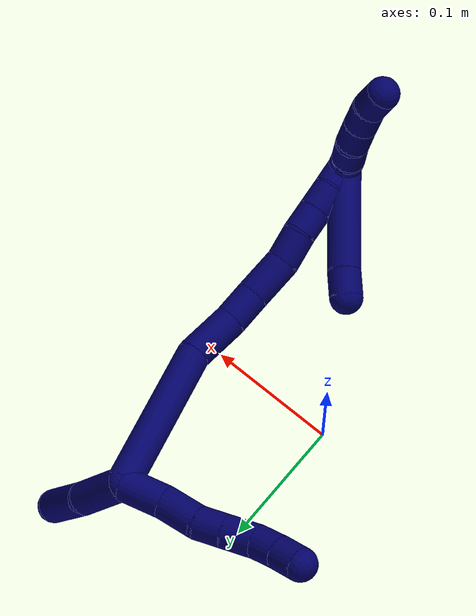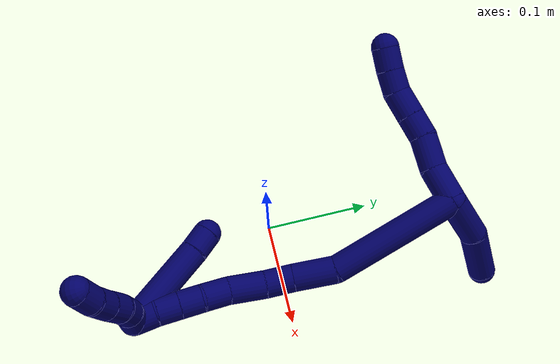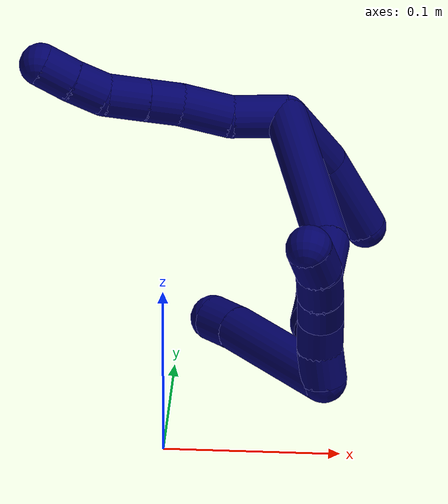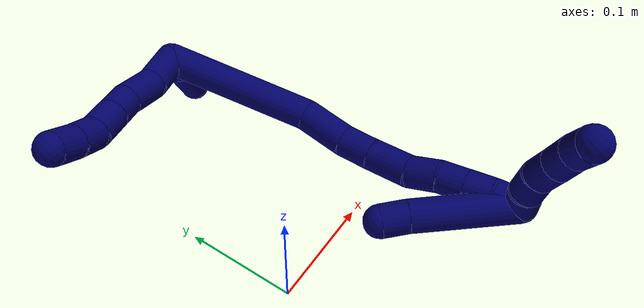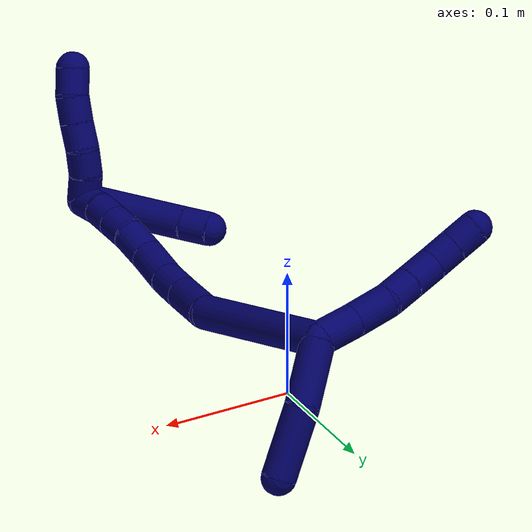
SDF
<sdf version="1.7">
 <world name="default">
  <model name="7">
   <static>0</static>
   <link name="7">
    <collision name="collision-cylinder-e_1_2_8">
     <pose>-0.015707 -0.00122 -0.00424 2.86149 -1.29694 -2.77373</pose>
     <geometry><cylinder><radius>0.0125</radius><length>0.03263</length></cylinder></geometry>
     <surface>
      <friction><ode><mu>1.16</mu><mu2>1.16</mu2><slip1>0</slip1><slip2>0</slip2></ode></friction>
      <contact><ode><kp>1e+06</kp><kd>1</kd><max_vel>0</max_vel><min_depth>0.001</min_depth></ode></contact>
     </surface>
    </collision>
    <visual name="visual-cylinder-e_1_2_8">
     <pose>-0.015707 -0.00122 -0.00424 2.86149 -1.29694 -2.77373</pose>
     <geometry><cylinder><radius>0.0125</radius><length>0.03263</length></cylinder></geometry>
     <material><ambient>0.003922 0 0.403922 1</ambient></material>
    </visual>
    <collision name="collision-cylinder-e_2_8_9">
     <pose>-0.046364 -0.004667 -0.008791 1.70917 -1.42151 -1.55976</pose>
     <geometry><cylinder><radius>0.0125</radius><length>0.030235</length></cylinder></geometry>
     <surface>
      <friction><ode><mu>1.16</mu><mu2>1.16</mu2><slip1>0</slip1><slip2>0</slip2></ode></friction>
      <contact><ode><kp>1e+06</kp><kd>1</kd><max_vel>0</max_vel><min_depth>0.001</min_depth></ode></contact>
     </surface>
    </collision>
    <visual name="visual-cylinder-e_2_8_9">
     <pose>-0.046364 -0.004667 -0.008791 1.70917 -1.42151 -1.55976</pose>
     <geometry><cylinder><radius>0.0125</radius><length>0.030235</length></cylinder></geometry>
     <material><ambient>0.003922 0 0.403922 1</ambient></material>
    </visual>
    <collision name="collision-cylinder-e_3_9_10">
     <pose>-0.071379 -0.009549 -0.01142 2.28868 -1.23388 -2.0022</pose>
     <geometry><cylinder><radius>0.0125</radius><length>0.02133</length></cylinder></geometry>
     <surface>
      <friction><ode><mu>1.16</mu><mu2>1.16</mu2><slip1>0</slip1><slip2>0</slip2></ode></friction>
      <contact><ode><kp>1e+06</kp><kd>1</kd><max_vel>0</max_vel><min_depth>0.001</min_depth></ode></contact>
     </surface>
    </collision>
    <visual name="visual-cylinder-e_3_9_10">
     <pose>-0.071379 -0.009549 -0.01142 2.28868 -1.23388 -2.0022</pose>
     <geometry><cylinder><radius>0.0125</radius><length>0.02133</length></cylinder></geometry>
     <material><ambient>0.003922 0 0.403922 1</ambient></material>
    </visual>
    <collision name="collision-cylinder-e_4_10_11">
     <pose>-0.093152 -0.01535 -0.016414 2.27559 -1.23173 -1.98435</pose>
     <geometry><cylinder><radius>0.0125</radius><length>0.024828</length></cylinder></geometry>
     <surface>
      <friction><ode><mu>1.16</mu><mu2>1.16</mu2><slip1>0</slip1><slip2>0</slip2></ode></friction>
      <contact><ode><kp>1e+06</kp><kd>1</kd><max_vel>0</max_vel><min_depth>0.001</min_depth></ode></contact>
     </surface>
    </collision>
    <visual name="visual-cylinder-e_4_10_11">
     <pose>-0.093152 -0.01535 -0.016414 2.27559 -1.23173 -1.98435</pose>
     <geometry><cylinder><radius>0.0125</radius><length>0.024828</length></cylinder></geometry>
     <material><ambient>0.003922 0 0.403922 1</ambient></material>
    </visual>
    <collision name="collision-cylinder-e_5_11_12">
     <pose>-0.114468 -0.021815 -0.018517 1.39987 -1.23358 -1.07667</pose>
     <geometry><cylinder><radius>0.0125</radius><length>0.020364</length></cylinder></geometry>
     <surface>
      <friction><ode><mu>1.16</mu><mu2>1.16</mu2><slip1>0</slip1><slip2>0</slip2></ode></friction>
      <contact><ode><kp>1e+06</kp><kd>1</kd><max_vel>0</max_vel><min_depth>0.001</min_depth></ode></contact>
     </surface>
    </collision>
    <visual name="visual-cylinder-e_5_11_12">
     <pose>-0.114468 -0.021815 -0.018517 1.39987 -1.23358 -1.07667</pose>
     <geometry><cylinder><radius>0.0125</radius><length>0.020364</length></cylinder></geometry>
     <material><ambient>0.003922 0 0.403922 1</ambient></material>
    </visual>
    <collision name="collision-cylinder-e_6_12_6">
     <pose>-0.133681 -0.028576 -0.016489 1.17093 -1.19986 -0.851555</pose>
     <geometry><cylinder><radius>0.0125</radius><length>0.020612</length></cylinder></geometry>
     <surface>
      <friction><ode><mu>1.16</mu><mu2>1.16</mu2><slip1>0</slip1><slip2>0</slip2></ode></friction>
      <contact><ode><kp>1e+06</kp><kd>1</kd><max_vel>0</max_vel><min_depth>0.001</min_depth></ode></contact>
     </surface>
    </collision>
    <visual name="visual-cylinder-e_6_12_6">
     <pose>-0.133681 -0.028576 -0.016489 1.17093 -1.19986 -0.851555</pose>
     <geometry><cylinder><radius>0.0125</radius><length>0.020612</length></cylinder></geometry>
     <material><ambient>0.003922 0 0.403922 1</ambient></material>
    </visual>
    <collision name="collision-cylinder-e_1_2_13">
     <pose>0.013658 0.019509 -7.9e-05 -1.57487 0.61078 -0.61312</pose>
     <geometry><cylinder><radius>0.0125</radius><length>0.04763</length></cylinder></geometry>
     <surface>
      <friction><ode><mu>1.16</mu><mu2>1.16</mu2><slip1>0</slip1><slip2>0</slip2></ode></friction>
      <contact><ode><kp>1e+06</kp><kd>1</kd><max_vel>0</max_vel><min_depth>0.001</min_depth></ode></contact>
     </surface>
    </collision>
    <visual name="visual-cylinder-e_1_2_13">
     <pose>0.013658 0.019509 -7.9e-05 -1.57487 0.61078 -0.61312</pose>
     <geometry><cylinder><radius>0.0125</radius><length>0.04763</length></cylinder></geometry>
     <material><ambient>0.003922 0 0.403922 1</ambient></material>
    </visual>
    <collision name="collision-cylinder-e_2_13_5">
     <pose>0.041933 0.059776 -0.006571 -1.87042 0.592234 -0.784282</pose>
     <geometry><cylinder><radius>0.0125</radius><length>0.05237</length></cylinder></geometry>
     <surface>
      <friction><ode><mu>1.16</mu><mu2>1.16</mu2><slip1>0</slip1><slip2>0</slip2></ode></friction>
      <contact><ode><kp>1e+06</kp><kd>1</kd><max_vel>0</max_vel><min_depth>0.001</min_depth></ode></contact>
     </surface>
    </collision>
    <visual name="visual-cylinder-e_2_13_5">
     <pose>0.041933 0.059776 -0.006571 -1.87042 0.592234 -0.784282</pose>
     <geometry><cylinder><radius>0.0125</radius><length>0.05237</length></cylinder></geometry>
     <material><ambient>0.003922 0 0.403922 1</ambient></material>
    </visual>
    <collision name="collision-cylinder-e_1_2_14">
     <pose>0.017741 -0.01881 -0.052966 2.80035 0.30574 1.45924</pose>
     <geometry><cylinder><radius>0.0125</radius><length>0.11788</length></cylinder></geometry>
     <surface>
      <friction><ode><mu>1.16</mu><mu2>1.16</mu2><slip1>0</slip1><slip2>0</slip2></ode></friction>
      <contact><ode><kp>1e+06</kp><kd>1</kd><max_vel>0</max_vel><min_depth>0.001</min_depth></ode></contact>
     </surface>
    </collision>
    <visual name="visual-cylinder-e_1_2_14">
     <pose>0.017741 -0.01881 -0.052966 2.80035 0.30574 1.45924</pose>
     <geometry><cylinder><radius>0.0125</radius><length>0.11788</length></cylinder></geometry>
     <material><ambient>0.003922 0 0.403922 1</ambient></material>
    </visual>
    <collision name="collision-cylinder-e_2_14_15">
     <pose>0.034902 -0.045246 -0.12363 2.73473 -0.030067 -0.145508</pose>
     <geometry><cylinder><radius>0.0125</radius><length>0.038559</length></cylinder></geometry>
     <surface>
      <friction><ode><mu>1.16</mu><mu2>1.16</mu2><slip1>0</slip1><slip2>0</slip2></ode></friction>
      <contact><ode><kp>1e+06</kp><kd>1</kd><max_vel>0</max_vel><min_depth>0.001</min_depth></ode></contact>
     </surface>
    </collision>
    <visual name="visual-cylinder-e_2_14_15">
     <pose>0.034902 -0.045246 -0.12363 2.73473 -0.030067 -0.145508</pose>
     <geometry><cylinder><radius>0.0125</radius><length>0.038559</length></cylinder></geometry>
     <material><ambient>0.003922 0 0.403922 1</ambient></material>
    </visual>
    <collision name="collision-cylinder-e_3_15_16">
     <pose>0.034674 -0.059278 -0.15227 2.61193 0.027707 0.102082</pose>
     <geometry><cylinder><radius>0.0125</radius><length>0.025369</length></cylinder></geometry>
     <surface>
      <friction><ode><mu>1.16</mu><mu2>1.16</mu2><slip1>0</slip1><slip2>0</slip2></ode></friction>
      <contact><ode><kp>1e+06</kp><kd>1</kd><max_vel>0</max_vel><min_depth>0.001</min_depth></ode></contact>
     </surface>
    </collision>
    <visual name="visual-cylinder-e_3_15_16">
     <pose>0.034674 -0.059278 -0.15227 2.61193 0.027707 0.102082</pose>
     <geometry><cylinder><radius>0.0125</radius><length>0.025369</length></cylinder></geometry>
     <material><ambient>0.003922 0 0.403922 1</ambient></material>
    </visual>
    <collision name="collision-cylinder-e_4_16_17">
     <pose>0.034598 -0.075377 -0.176663 2.51718 -0.025791 -0.079868</pose>
     <geometry><cylinder><radius>0.0125</radius><length>0.03317</length></cylinder></geometry>
     <surface>
      <friction><ode><mu>1.16</mu><mu2>1.16</mu2><slip1>0</slip1><slip2>0</slip2></ode></friction>
      <contact><ode><kp>1e+06</kp><kd>1</kd><max_vel>0</max_vel><min_depth>0.001</min_depth></ode></contact>
     </surface>
    </collision>
    <visual name="visual-cylinder-e_4_16_17">
     <pose>0.034598 -0.075377 -0.176663 2.51718 -0.025791 -0.079868</pose>
     <geometry><cylinder><radius>0.0125</radius><length>0.03317</length></cylinder></geometry>
     <material><ambient>0.003922 0 0.403922 1</ambient></material>
    </visual>
    <collision name="collision-cylinder-e_5_17_18">
     <pose>0.03557 -0.094033 -0.198171 2.30304 0.1156 0.258211</pose>
     <geometry><cylinder><radius>0.0125</radius><length>0.024266</length></cylinder></geometry>
     <surface>
      <friction><ode><mu>1.16</mu><mu2>1.16</mu2><slip1>0</slip1><slip2>0</slip2></ode></friction>
      <contact><ode><kp>1e+06</kp><kd>1</kd><max_vel>0</max_vel><min_depth>0.001</min_depth></ode></contact>
     </surface>
    </collision>
    <visual name="visual-cylinder-e_5_17_18">
     <pose>0.03557 -0.094033 -0.198171 2.30304 0.1156 0.258211</pose>
     <geometry><cylinder><radius>0.0125</radius><length>0.024266</length></cylinder></geometry>
     <material><ambient>0.003922 0 0.403922 1</ambient></material>
    </visual>
    <collision name="collision-cylinder-e_6_18_19">
     <pose>0.038043 -0.108917 -0.214355 2.51186 0.10636 0.324001</pose>
     <geometry><cylinder><radius>0.0125</radius><length>0.020224</length></cylinder></geometry>
     <surface>
      <friction><ode><mu>1.16</mu><mu2>1.16</mu2><slip1>0</slip1><slip2>0</slip2></ode></friction>
      <contact><ode><kp>1e+06</kp><kd>1</kd><max_vel>0</max_vel><min_depth>0.001</min_depth></ode></contact>
     </surface>
    </collision>
    <visual name="visual-cylinder-e_6_18_19">
     <pose>0.038043 -0.108917 -0.214355 2.51186 0.10636 0.324001</pose>
     <geometry><cylinder><radius>0.0125</radius><length>0.020224</length></cylinder></geometry>
     <material><ambient>0.003922 0 0.403922 1</ambient></material>
    </visual>
    <collision name="collision-cylinder-e_7_19_20">
     <pose>0.0402 -0.120723 -0.230581 2.51326 0.107872 0.329304</pose>
     <geometry><cylinder><radius>0.0125</radius><length>0.020141</length></cylinder></geometry>
     <surface>
      <friction><ode><mu>1.16</mu><mu2>1.16</mu2><slip1>0</slip1><slip2>0</slip2></ode></friction>
      <contact><ode><kp>1e+06</kp><kd>1</kd><max_vel>0</max_vel><min_depth>0.001</min_depth></ode></contact>
     </surface>
    </collision>
    <visual name="visual-cylinder-e_7_19_20">
     <pose>0.0402 -0.120723 -0.230581 2.51326 0.107872 0.329304</pose>
     <geometry><cylinder><radius>0.0125</radius><length>0.020141</length></cylinder></geometry>
     <material><ambient>0.003922 0 0.403922 1</ambient></material>
    </visual>
    <collision name="collision-cylinder-e_8_20_1">
     <pose>0.043024 -0.131238 -0.247596 2.66267 0.171478 0.676981</pose>
     <geometry><cylinder><radius>0.0125</radius><length>0.02039</length></cylinder></geometry>
     <surface>
      <friction><ode><mu>1.16</mu><mu2>1.16</mu2><slip1>0</slip1><slip2>0</slip2></ode></friction>
      <contact><ode><kp>1e+06</kp><kd>1</kd><max_vel>0</max_vel><min_depth>0.001</min_depth></ode></contact>
     </surface>
    </collision>
    <visual name="visual-cylinder-e_8_20_1">
     <pose>0.043024 -0.131238 -0.247596 2.66267 0.171478 0.676981</pose>
     <geometry><cylinder><radius>0.0125</radius><length>0.02039</length></cylinder></geometry>
     <material><ambient>0.003922 0 0.403922 1</ambient></material>
    </visual>
    <collision name="collision-cylinder-e_1_1_21">
     <pose>0.019328 -0.116208 -0.232819 -0.692625 -0.690514 0.258129</pose>
     <geometry><cylinder><radius>0.0125</radius><length>0.07987</length></cylinder></geometry>
     <surface>
      <friction><ode><mu>1.16</mu><mu2>1.16</mu2><slip1>0</slip1><slip2>0</slip2></ode></friction>
      <contact><ode><kp>1e+06</kp><kd>1</kd><max_vel>0</max_vel><min_depth>0.001</min_depth></ode></contact>
     </surface>
    </collision>
    <visual name="visual-cylinder-e_1_1_21">
     <pose>0.019328 -0.116208 -0.232819 -0.692625 -0.690514 0.258129</pose>
     <geometry><cylinder><radius>0.0125</radius><length>0.07987</length></cylinder></geometry>
     <material><ambient>0.003922 0 0.403922 1</ambient></material>
    </visual>
    <collision name="collision-cylinder-e_2_21_4">
     <pose>-0.013033 -0.091502 -0.203846 -0.76278 -0.758714 0.317068</pose>
     <geometry><cylinder><radius>0.0125</radius><length>0.02013</length></cylinder></geometry>
     <surface>
      <friction><ode><mu>1.16</mu><mu2>1.16</mu2><slip1>0</slip1><slip2>0</slip2></ode></friction>
      <contact><ode><kp>1e+06</kp><kd>1</kd><max_vel>0</max_vel><min_depth>0.001</min_depth></ode></contact>
     </surface>
    </collision>
    <visual name="visual-cylinder-e_2_21_4">
     <pose>-0.013033 -0.091502 -0.203846 -0.76278 -0.758714 0.317068</pose>
     <geometry><cylinder><radius>0.0125</radius><length>0.02013</length></cylinder></geometry>
     <material><ambient>0.003922 0 0.403922 1</ambient></material>
    </visual>
    <collision name="collision-cylinder-e_1_1_22">
     <pose>0.042204 -0.144471 -0.252105 1.09743 -0.258904 -0.158834</pose>
     <geometry><cylinder><radius>0.0125</radius><length>0.02</length></cylinder></geometry>
     <surface>
      <friction><ode><mu>1.16</mu><mu2>1.16</mu2><slip1>0</slip1><slip2>0</slip2></ode></friction>
      <contact><ode><kp>1e+06</kp><kd>1</kd><max_vel>0</max_vel><min_depth>0.001</min_depth></ode></contact>
     </surface>
    </collision>
    <visual name="visual-cylinder-e_1_1_22">
     <pose>0.042204 -0.144471 -0.252105 1.09743 -0.258904 -0.158834</pose>
     <geometry><cylinder><radius>0.0125</radius><length>0.02</length></cylinder></geometry>
     <material><ambient>0.003922 0 0.403922 1</ambient></material>
    </visual>
    <collision name="collision-cylinder-e_2_22_23">
     <pose>0.038525 -0.162509 -0.244577 1.25138 -0.112087 -0.081027</pose>
     <geometry><cylinder><radius>0.0125</radius><length>0.02</length></cylinder></geometry>
     <surface>
      <friction><ode><mu>1.16</mu><mu2>1.16</mu2><slip1>0</slip1><slip2>0</slip2></ode></friction>
      <contact><ode><kp>1e+06</kp><kd>1</kd><max_vel>0</max_vel><min_depth>0.001</min_depth></ode></contact>
     </surface>
    </collision>
    <visual name="visual-cylinder-e_2_22_23">
     <pose>0.038525 -0.162509 -0.244577 1.25138 -0.112087 -0.081027</pose>
     <geometry><cylinder><radius>0.0125</radius><length>0.02</length></cylinder></geometry>
     <material><ambient>0.003922 0 0.403922 1</ambient></material>
    </visual>
    <collision name="collision-cylinder-e_3_23_24">
     <pose>0.036311 -0.181853 -0.24068 1.49253 -0.109791 -0.101532</pose>
     <geometry><cylinder><radius>0.0125</radius><length>0.02</length></cylinder></geometry>
     <surface>
      <friction><ode><mu>1.16</mu><mu2>1.16</mu2><slip1>0</slip1><slip2>0</slip2></ode></friction>
      <contact><ode><kp>1e+06</kp><kd>1</kd><max_vel>0</max_vel><min_depth>0.001</min_depth></ode></contact>
     </surface>
    </collision>
    <visual name="visual-cylinder-e_3_23_24">
     <pose>0.036311 -0.181853 -0.24068 1.49253 -0.109791 -0.101532</pose>
     <geometry><cylinder><radius>0.0125</radius><length>0.02</length></cylinder></geometry>
     <material><ambient>0.003922 0 0.403922 1</ambient></material>
    </visual>
    <collision name="collision-cylinder-e_4_24_25">
     <pose>0.033665 -0.201582 -0.238821 1.46111 -0.155621 -0.13948</pose>
     <geometry><cylinder><radius>0.0125</radius><length>0.02</length></cylinder></geometry>
     <surface>
      <friction><ode><mu>1.16</mu><mu2>1.16</mu2><slip1>0</slip1><slip2>0</slip2></ode></friction>
      <contact><ode><kp>1e+06</kp><kd>1</kd><max_vel>0</max_vel><min_depth>0.001</min_depth></ode></contact>
     </surface>
    </collision>
    <visual name="visual-cylinder-e_4_24_25">
     <pose>0.033665 -0.201582 -0.238821 1.46111 -0.155621 -0.13948</pose>
     <geometry><cylinder><radius>0.0125</radius><length>0.02</length></cylinder></geometry>
     <material><ambient>0.003922 0 0.403922 1</ambient></material>
    </visual>
    <collision name="collision-cylinder-e_5_25_3">
     <pose>0.028526 -0.220723 -0.237247 1.51804 -0.367136 -0.34865</pose>
     <geometry><cylinder><radius>0.0125</radius><length>0.02</length></cylinder></geometry>
     <surface>
      <friction><ode><mu>1.16</mu><mu2>1.16</mu2><slip1>0</slip1><slip2>0</slip2></ode></friction>
      <contact><ode><kp>1e+06</kp><kd>1</kd><max_vel>0</max_vel><min_depth>0.001</min_depth></ode></contact>
     </surface>
    </collision>
    <visual name="visual-cylinder-e_5_25_3">
     <pose>0.028526 -0.220723 -0.237247 1.51804 -0.367136 -0.34865</pose>
     <geometry><cylinder><radius>0.0125</radius><length>0.02</length></cylinder></geometry>
     <material><ambient>0.003922 0 0.403922 1</ambient></material>
    </visual>
    <collision name="collision-sphere-3">
     <pose>0.024936 -0.230043 -0.236755 0 -0 0</pose>
     <geometry><sphere><radius>0.0125</radius></sphere></geometry>
     <surface>
      <friction><ode><mu>1.16</mu><mu2>1.16</mu2><slip1>0</slip1><slip2>0</slip2></ode></friction>
      <contact><ode><kp>1e+06</kp><kd>1</kd><max_vel>0</max_vel><min_depth>0.001</min_depth></ode></contact>
     </surface>
    </collision>
    <visual name="visual-sphere-3">
     <pose>0.024936 -0.230043 -0.236755 0 -0 0</pose>
     <geometry><sphere><radius>0.0125</radius></sphere></geometry>
     <material><ambient>0.003922 0 0.403922 1</ambient></material>
    </visual>
    <collision name="collision-sphere-25">
     <pose>0.032115 -0.211402 -0.23774 0 -0 0</pose>
     <geometry><sphere><radius>0.0125</radius></sphere></geometry>
     <surface>
      <friction><ode><mu>1.16</mu><mu2>1.16</mu2><slip1>0</slip1><slip2>0</slip2></ode></friction>
      <contact><ode><kp>1e+06</kp><kd>1</kd><max_vel>0</max_vel><min_depth>0.001</min_depth></ode></contact>
     </surface>
    </collision>
    <visual name="visual-sphere-25">
     <pose>0.032115 -0.211402 -0.23774 0 -0 0</pose>
     <geometry><sphere><radius>0.0125</radius></sphere></geometry>
     <material><ambient>0.003922 0 0.403922 1</ambient></material>
    </visual>
    <collision name="collision-sphere-24">
     <pose>0.035215 -0.191763 -0.239902 0 -0 0</pose>
     <geometry><sphere><radius>0.0125</radius></sphere></geometry>
     <surface>
      <friction><ode><mu>1.16</mu><mu2>1.16</mu2><slip1>0</slip1><slip2>0</slip2></ode></friction>
      <contact><ode><kp>1e+06</kp><kd>1</kd><max_vel>0</max_vel><min_depth>0.001</min_depth></ode></contact>
     </surface>
    </collision>
    <visual name="visual-sphere-24">
     <pose>0.035215 -0.191763 -0.239902 0 -0 0</pose>
     <geometry><sphere><radius>0.0125</radius></sphere></geometry>
     <material><ambient>0.003922 0 0.403922 1</ambient></material>
    </visual>
    <collision name="collision-sphere-23">
     <pose>0.037406 -0.171944 -0.241457 0 -0 0</pose>
     <geometry><sphere><radius>0.0125</radius></sphere></geometry>
     <surface>
      <friction><ode><mu>1.16</mu><mu2>1.16</mu2><slip1>0</slip1><slip2>0</slip2></ode></friction>
      <contact><ode><kp>1e+06</kp><kd>1</kd><max_vel>0</max_vel><min_depth>0.001</min_depth></ode></contact>
     </surface>
    </collision>
    <visual name="visual-sphere-23">
     <pose>0.037406 -0.171944 -0.241457 0 -0 0</pose>
     <geometry><sphere><radius>0.0125</radius></sphere></geometry>
     <material><ambient>0.003922 0 0.403922 1</ambient></material>
    </visual>
    <collision name="collision-sphere-22">
     <pose>0.039643 -0.153075 -0.247698 0 -0 0</pose>
     <geometry><sphere><radius>0.0125</radius></sphere></geometry>
     <surface>
      <friction><ode><mu>1.16</mu><mu2>1.16</mu2><slip1>0</slip1><slip2>0</slip2></ode></friction>
      <contact><ode><kp>1e+06</kp><kd>1</kd><max_vel>0</max_vel><min_depth>0.001</min_depth></ode></contact>
     </surface>
    </collision>
    <visual name="visual-sphere-22">
     <pose>0.039643 -0.153075 -0.247698 0 -0 0</pose>
     <geometry><sphere><radius>0.0125</radius></sphere></geometry>
     <material><ambient>0.003922 0 0.403922 1</ambient></material>
    </visual>
    <collision name="collision-sphere-4">
     <pose>-0.019957 -0.086455 -0.198565 0 -0 0</pose>
     <geometry><sphere><radius>0.0125</radius></sphere></geometry>
     <surface>
      <friction><ode><mu>1.16</mu><mu2>1.16</mu2><slip1>0</slip1><slip2>0</slip2></ode></friction>
      <contact><ode><kp>1e+06</kp><kd>1</kd><max_vel>0</max_vel><min_depth>0.001</min_depth></ode></contact>
     </surface>
    </collision>
    <visual name="visual-sphere-4">
     <pose>-0.019957 -0.086455 -0.198565 0 -0 0</pose>
     <geometry><sphere><radius>0.0125</radius></sphere></geometry>
     <material><ambient>0.003922 0 0.403922 1</ambient></material>
    </visual>
    <collision name="collision-sphere-21">
     <pose>-0.006108 -0.096549 -0.209126 0 -0 0</pose>
     <geometry><sphere><radius>0.0125</radius></sphere></geometry>
     <surface>
      <friction><ode><mu>1.16</mu><mu2>1.16</mu2><slip1>0</slip1><slip2>0</slip2></ode></friction>
      <contact><ode><kp>1e+06</kp><kd>1</kd><max_vel>0</max_vel><min_depth>0.001</min_depth></ode></contact>
     </surface>
    </collision>
    <visual name="visual-sphere-21">
     <pose>-0.006108 -0.096549 -0.209126 0 -0 0</pose>
     <geometry><sphere><radius>0.0125</radius></sphere></geometry>
     <material><ambient>0.003922 0 0.403922 1</ambient></material>
    </visual>
    <collision name="collision-sphere-1">
     <pose>0.044764 -0.135867 -0.256511 0 -0 0</pose>
     <geometry><sphere><radius>0.0125</radius></sphere></geometry>
     <surface>
      <friction><ode><mu>1.16</mu><mu2>1.16</mu2><slip1>0</slip1><slip2>0</slip2></ode></friction>
      <contact><ode><kp>1e+06</kp><kd>1</kd><max_vel>0</max_vel><min_depth>0.001</min_depth></ode></contact>
     </surface>
    </collision>
    <visual name="visual-sphere-1">
     <pose>0.044764 -0.135867 -0.256511 0 -0 0</pose>
     <geometry><sphere><radius>0.0125</radius></sphere></geometry>
     <material><ambient>0.003922 0 0.403922 1</ambient></material>
    </visual>
    <collision name="collision-sphere-12">
     <pose>-0.124076 -0.025135 -0.017943 0 -0 0</pose>
     <geometry><sphere><radius>0.0125</radius></sphere></geometry>
     <surface>
      <friction><ode><mu>1.16</mu><mu2>1.16</mu2><slip1>0</slip1><slip2>0</slip2></ode></friction>
      <contact><ode><kp>1e+06</kp><kd>1</kd><max_vel>0</max_vel><min_depth>0.001</min_depth></ode></contact>
     </surface>
    </collision>
    <visual name="visual-sphere-12">
     <pose>-0.124076 -0.025135 -0.017943 0 -0 0</pose>
     <geometry><sphere><radius>0.0125</radius></sphere></geometry>
     <material><ambient>0.003922 0 0.403922 1</ambient></material>
    </visual>
    <collision name="collision-sphere-11">
     <pose>-0.104859 -0.018495 -0.01909 0 -0 0</pose>
     <geometry><sphere><radius>0.0125</radius></sphere></geometry>
     <surface>
      <friction><ode><mu>1.16</mu><mu2>1.16</mu2><slip1>0</slip1><slip2>0</slip2></ode></friction>
      <contact><ode><kp>1e+06</kp><kd>1</kd><max_vel>0</max_vel><min_depth>0.001</min_depth></ode></contact>
     </surface>
    </collision>
    <visual name="visual-sphere-11">
     <pose>-0.104859 -0.018495 -0.01909 0 -0 0</pose>
     <geometry><sphere><radius>0.0125</radius></sphere></geometry>
     <material><ambient>0.003922 0 0.403922 1</ambient></material>
    </visual>
    <collision name="collision-sphere-10">
     <pose>-0.081444 -0.012205 -0.013739 0 -0 0</pose>
     <geometry><sphere><radius>0.0125</radius></sphere></geometry>
     <surface>
      <friction><ode><mu>1.16</mu><mu2>1.16</mu2><slip1>0</slip1><slip2>0</slip2></ode></friction>
      <contact><ode><kp>1e+06</kp><kd>1</kd><max_vel>0</max_vel><min_depth>0.001</min_depth></ode></contact>
     </surface>
    </collision>
    <visual name="visual-sphere-10">
     <pose>-0.081444 -0.012205 -0.013739 0 -0 0</pose>
     <geometry><sphere><radius>0.0125</radius></sphere></geometry>
     <material><ambient>0.003922 0 0.403922 1</ambient></material>
    </visual>
    <collision name="collision-sphere-9">
     <pose>-0.061313 -0.006894 -0.009101 0 -0 0</pose>
     <geometry><sphere><radius>0.0125</radius></sphere></geometry>
     <surface>
      <friction><ode><mu>1.16</mu><mu2>1.16</mu2><slip1>0</slip1><slip2>0</slip2></ode></friction>
      <contact><ode><kp>1e+06</kp><kd>1</kd><max_vel>0</max_vel><min_depth>0.001</min_depth></ode></contact>
     </surface>
    </collision>
    <visual name="visual-sphere-9">
     <pose>-0.061313 -0.006894 -0.009101 0 -0 0</pose>
     <geometry><sphere><radius>0.0125</radius></sphere></geometry>
     <material><ambient>0.003922 0 0.403922 1</ambient></material>
    </visual>
    <collision name="collision-sphere-2">
     <geometry><sphere><radius>0.0125</radius></sphere></geometry>
     <surface>
      <friction><ode><mu>1.16</mu><mu2>1.16</mu2><slip1>0</slip1><slip2>0</slip2></ode></friction>
      <contact><ode><kp>1e+06</kp><kd>1</kd><max_vel>0</max_vel><min_depth>0.001</min_depth></ode></contact>
     </surface>
    </collision>
    <visual name="visual-sphere-2">
     <geometry><sphere><radius>0.0125</radius></sphere></geometry>
     <material><ambient>0.003922 0 0.403922 1</ambient></material>
    </visual>
    <collision name="collision-sphere-19">
     <pose>0.039116 -0.114838 -0.222481 0 -0 0</pose>
     <geometry><sphere><radius>0.0125</radius></sphere></geometry>
     <surface>
      <friction><ode><mu>1.16</mu><mu2>1.16</mu2><slip1>0</slip1><slip2>0</slip2></ode></friction>
      <contact><ode><kp>1e+06</kp><kd>1</kd><max_vel>0</max_vel><min_depth>0.001</min_depth></ode></contact>
     </surface>
    </collision>
    <visual name="visual-sphere-19">
     <pose>0.039116 -0.114838 -0.222481 0 -0 0</pose>
     <geometry><sphere><radius>0.0125</radius></sphere></geometry>
     <material><ambient>0.003922 0 0.403922 1</ambient></material>
    </visual>
    <collision name="collision-sphere-8">
     <pose>-0.031414 -0.00244 -0.008481 0 -0 0</pose>
     <geometry><sphere><radius>0.0125</radius></sphere></geometry>
     <surface>
      <friction><ode><mu>1.16</mu><mu2>1.16</mu2><slip1>0</slip1><slip2>0</slip2></ode></friction>
      <contact><ode><kp>1e+06</kp><kd>1</kd><max_vel>0</max_vel><min_depth>0.001</min_depth></ode></contact>
     </surface>
    </collision>
    <visual name="visual-sphere-8">
     <pose>-0.031414 -0.00244 -0.008481 0 -0 0</pose>
     <geometry><sphere><radius>0.0125</radius></sphere></geometry>
     <material><ambient>0.003922 0 0.403922 1</ambient></material>
    </visual>
    <collision name="collision-sphere-6">
     <pose>-0.143286 -0.032017 -0.015035 0 -0 0</pose>
     <geometry><sphere><radius>0.0125</radius></sphere></geometry>
     <surface>
      <friction><ode><mu>1.16</mu><mu2>1.16</mu2><slip1>0</slip1><slip2>0</slip2></ode></friction>
      <contact><ode><kp>1e+06</kp><kd>1</kd><max_vel>0</max_vel><min_depth>0.001</min_depth></ode></contact>
     </surface>
    </collision>
    <visual name="visual-sphere-6">
     <pose>-0.143286 -0.032017 -0.015035 0 -0 0</pose>
     <geometry><sphere><radius>0.0125</radius></sphere></geometry>
     <material><ambient>0.003922 0 0.403922 1</ambient></material>
    </visual>
    <collision name="collision-sphere-13">
     <pose>0.027316 0.039018 -0.000159 0 -0 0</pose>
     <geometry><sphere><radius>0.0125</radius></sphere></geometry>
     <surface>
      <friction><ode><mu>1.16</mu><mu2>1.16</mu2><slip1>0</slip1><slip2>0</slip2></ode></friction>
      <contact><ode><kp>1e+06</kp><kd>1</kd><max_vel>0</max_vel><min_depth>0.001</min_depth></ode></contact>
     </surface>
    </collision>
    <visual name="visual-sphere-13">
     <pose>0.027316 0.039018 -0.000159 0 -0 0</pose>
     <geometry><sphere><radius>0.0125</radius></sphere></geometry>
     <material><ambient>0.003922 0 0.403922 1</ambient></material>
    </visual>
    <collision name="collision-sphere-5">
     <pose>0.05655 0.080534 -0.012984 0 -0 0</pose>
     <geometry><sphere><radius>0.0125</radius></sphere></geometry>
     <surface>
      <friction><ode><mu>1.16</mu><mu2>1.16</mu2><slip1>0</slip1><slip2>0</slip2></ode></friction>
      <contact><ode><kp>1e+06</kp><kd>1</kd><max_vel>0</max_vel><min_depth>0.001</min_depth></ode></contact>
     </surface>
    </collision>
    <visual name="visual-sphere-5">
     <pose>0.05655 0.080534 -0.012984 0 -0 0</pose>
     <geometry><sphere><radius>0.0125</radius></sphere></geometry>
     <material><ambient>0.003922 0 0.403922 1</ambient></material>
    </visual>
    <collision name="collision-sphere-14">
     <pose>0.035482 -0.03762 -0.105932 0 -0 0</pose>
     <geometry><sphere><radius>0.0125</radius></sphere></geometry>
     <surface>
      <friction><ode><mu>1.16</mu><mu2>1.16</mu2><slip1>0</slip1><slip2>0</slip2></ode></friction>
      <contact><ode><kp>1e+06</kp><kd>1</kd><max_vel>0</max_vel><min_depth>0.001</min_depth></ode></contact>
     </surface>
    </collision>
    <visual name="visual-sphere-14">
     <pose>0.035482 -0.03762 -0.105932 0 -0 0</pose>
     <geometry><sphere><radius>0.0125</radius></sphere></geometry>
     <material><ambient>0.003922 0 0.403922 1</ambient></material>
    </visual>
    <collision name="collision-sphere-15">
     <pose>0.034323 -0.052872 -0.141328 0 -0 0</pose>
     <geometry><sphere><radius>0.0125</radius></sphere></geometry>
     <surface>
      <friction><ode><mu>1.16</mu><mu2>1.16</mu2><slip1>0</slip1><slip2>0</slip2></ode></friction>
      <contact><ode><kp>1e+06</kp><kd>1</kd><max_vel>0</max_vel><min_depth>0.001</min_depth></ode></contact>
     </surface>
    </collision>
    <visual name="visual-sphere-15">
     <pose>0.034323 -0.052872 -0.141328 0 -0 0</pose>
     <geometry><sphere><radius>0.0125</radius></sphere></geometry>
     <material><ambient>0.003922 0 0.403922 1</ambient></material>
    </visual>
    <collision name="collision-sphere-16">
     <pose>0.035026 -0.065684 -0.163212 0 -0 0</pose>
     <geometry><sphere><radius>0.0125</radius></sphere></geometry>
     <surface>
      <friction><ode><mu>1.16</mu><mu2>1.16</mu2><slip1>0</slip1><slip2>0</slip2></ode></friction>
      <contact><ode><kp>1e+06</kp><kd>1</kd><max_vel>0</max_vel><min_depth>0.001</min_depth></ode></contact>
     </surface>
    </collision>
    <visual name="visual-sphere-16">
     <pose>0.035026 -0.065684 -0.163212 0 -0 0</pose>
     <geometry><sphere><radius>0.0125</radius></sphere></geometry>
     <material><ambient>0.003922 0 0.403922 1</ambient></material>
    </visual>
    <collision name="collision-sphere-17">
     <pose>0.03417 -0.08507 -0.190114 0 -0 0</pose>
     <geometry><sphere><radius>0.0125</radius></sphere></geometry>
     <surface>
      <friction><ode><mu>1.16</mu><mu2>1.16</mu2><slip1>0</slip1><slip2>0</slip2></ode></friction>
      <contact><ode><kp>1e+06</kp><kd>1</kd><max_vel>0</max_vel><min_depth>0.001</min_depth></ode></contact>
     </surface>
    </collision>
    <visual name="visual-sphere-17">
     <pose>0.03417 -0.08507 -0.190114 0 -0 0</pose>
     <geometry><sphere><radius>0.0125</radius></sphere></geometry>
     <material><ambient>0.003922 0 0.403922 1</ambient></material>
    </visual>
    <collision name="collision-sphere-18">
     <pose>0.036969 -0.102996 -0.206229 0 -0 0</pose>
     <geometry><sphere><radius>0.0125</radius></sphere></geometry>
     <surface>
      <friction><ode><mu>1.16</mu><mu2>1.16</mu2><slip1>0</slip1><slip2>0</slip2></ode></friction>
      <contact><ode><kp>1e+06</kp><kd>1</kd><max_vel>0</max_vel><min_depth>0.001</min_depth></ode></contact>
     </surface>
    </collision>
    <visual name="visual-sphere-18">
     <pose>0.036969 -0.102996 -0.206229 0 -0 0</pose>
     <geometry><sphere><radius>0.0125</radius></sphere></geometry>
     <material><ambient>0.003922 0 0.403922 1</ambient></material>
    </visual>
    <collision name="collision-sphere-20">
     <pose>0.041284 -0.126608 -0.238681 0 -0 0</pose>
     <geometry><sphere><radius>0.0125</radius></sphere></geometry>
     <surface>
      <friction><ode><mu>1.16</mu><mu2>1.16</mu2><slip1>0</slip1><slip2>0</slip2></ode></friction>
      <contact><ode><kp>1e+06</kp><kd>1</kd><max_vel>0</max_vel><min_depth>0.001</min_depth></ode></contact>
     </surface>
    </collision>
    <visual name="visual-sphere-20">
     <pose>0.041284 -0.126608 -0.238681 0 -0 0</pose>
     <geometry><sphere><radius>0.0125</radius></sphere></geometry>
     <material><ambient>0.003922 0 0.403922 1</ambient></material>
    </visual>
    <inertial>
     <pose>0.007547 -0.059525 -0.11821 0 -0 0</pose>
     <mass>0.75</mass>
     <inertia><ixx>0.000207</ixx><ixy>0</ixy><ixz>0</ixz><iyy>0.000162</iyy><iyz>0</iyz><izz>-6e-06</izz></inertia>
    </inertial>
   </link>
   <pose>0.061081 0.154246 0.136141 -1.05636 0.143827 -0.029034</pose>
  </model>
 </world>
</sdf>
